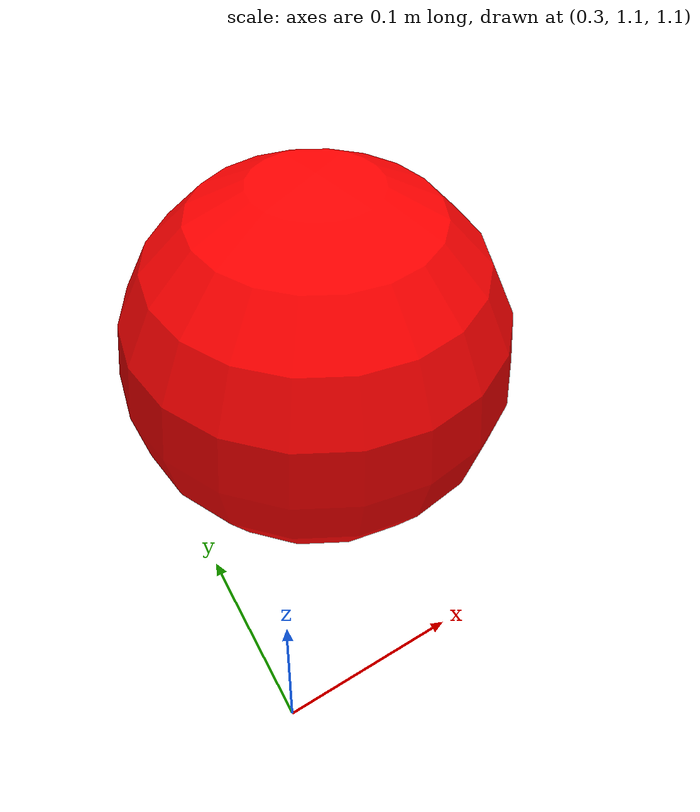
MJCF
<mujoco>
  <default>
    <default class="cube">
      <geom friction="3.0 0.02 0.001" condim="4"/>
    </default>
  </default>

  <worldbody>
    <body name="cube" pos="0.4 1.25 1.2" quat="1 0 0 0" childclass="cube">
      <freejoint name="cube_freejoint"/>
      <geom name="cube" type="sphere" size="0.12" solimp="0.9 0.95 0.001" solref="0.01 1.5"
            mass="0.768" friction="3.0 0.02 0.001" rgba="1 0 0 1" group="0" condim="4"/>
      <site name="cube_center" pos="0 0 0" group="4"/>
    </body>
  </worldbody>
</mujoco>
